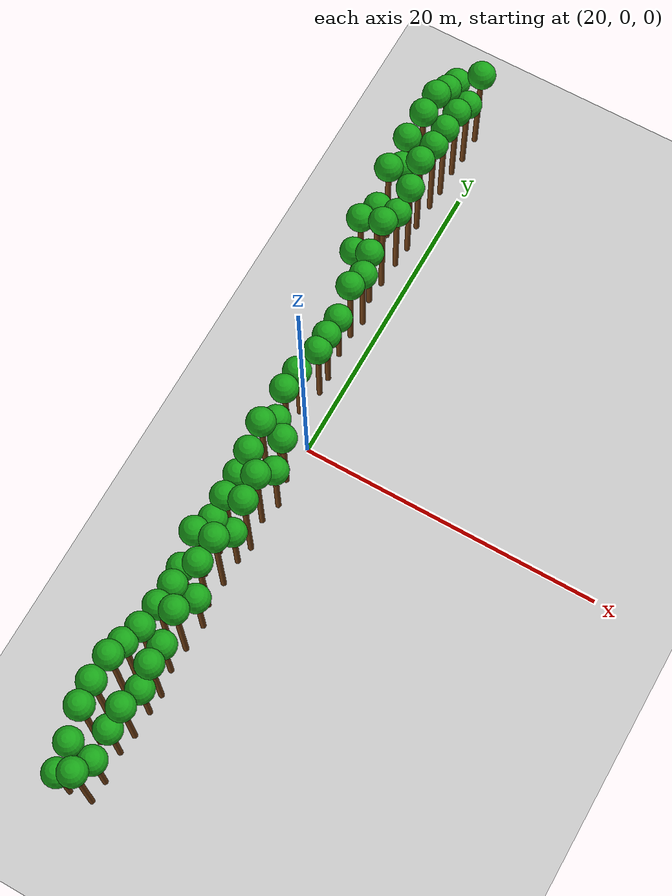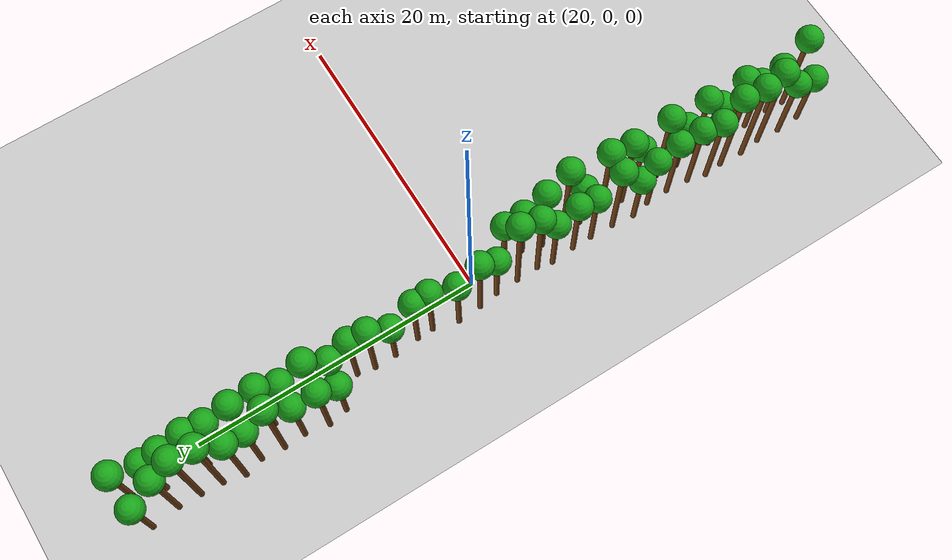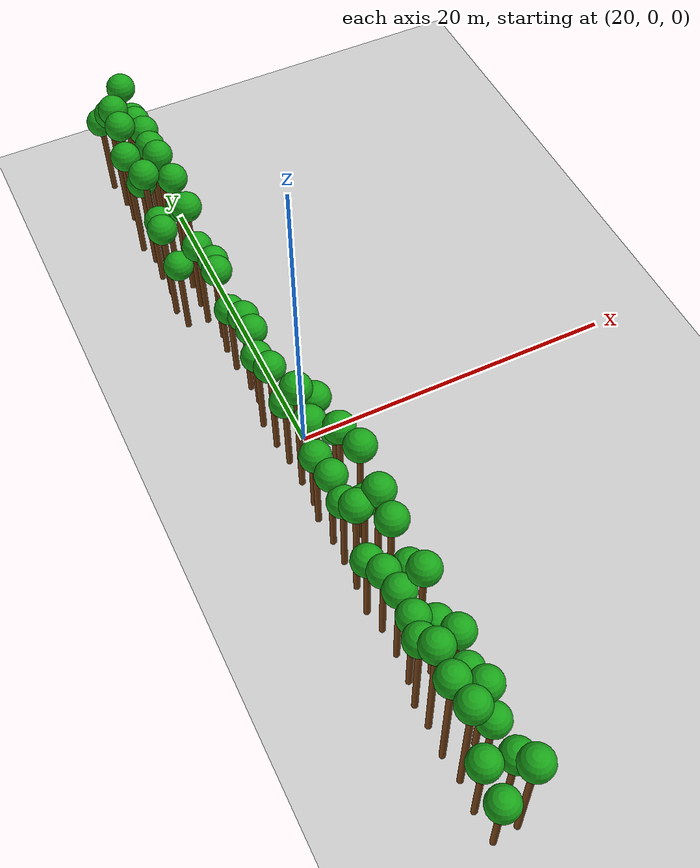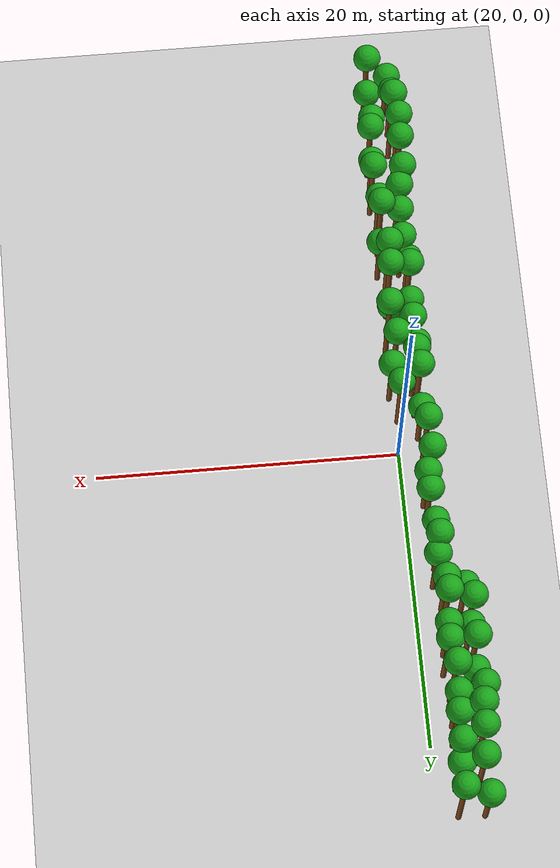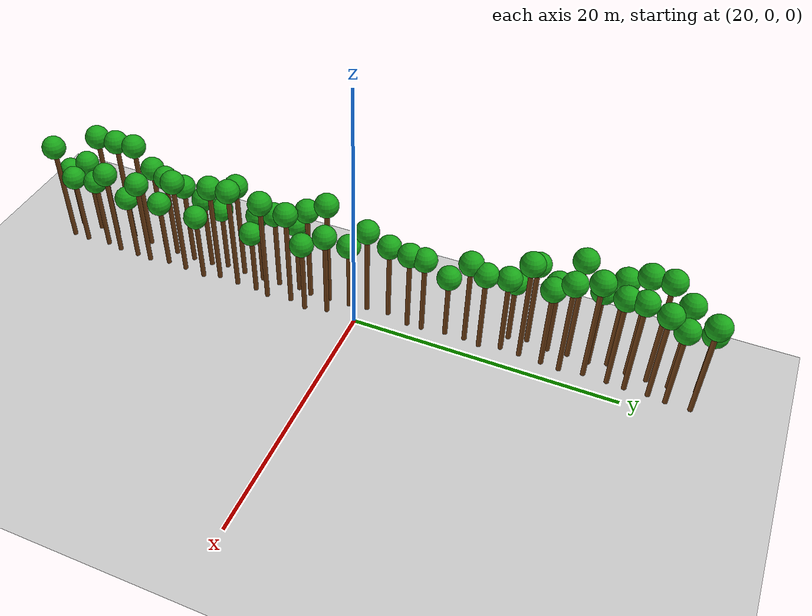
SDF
<sdf version="1.6">
 <world name="forest_world">
  <include><uri>model://sun</uri></include>
  <include><uri>model://ground_plane</uri></include>
  <model name="tree_963">
   <static>true</static>
   <link name="trunk">
    <collision name="collision">
     <pose>17.08 11.07 2.53 0 0 0</pose>
     <geometry><cylinder><radius>0.18</radius><length>5.06</length></cylinder></geometry>
    </collision>
    <visual name="trunk_visual">
     <pose>17.08 11.07 2.53 0 0 0</pose>
     <geometry><cylinder><radius>0.18</radius><length>5.06</length></cylinder></geometry>
     <material><ambient>0.35 0.20 0.05 1</ambient><diffuse>0.45 0.25 0.08 1</diffuse></material>
    </visual>
    <visual name="leaf_visual">
     <pose>17.08 11.07 5.51 0 0 0</pose>
     <geometry><sphere><radius>0.9</radius></sphere></geometry>
     <material><ambient>0.05 0.45 0.05 1</ambient><diffuse>0.10 0.65 0.10 1</diffuse></material>
    </visual>
   </link>
  </model>
  <model name="tree_964">
   <static>true</static>
   <link name="trunk">
    <collision name="collision">
     <pose>16.81 12.41 3.49 0 0 0</pose>
     <geometry><cylinder><radius>0.18</radius><length>6.98</length></cylinder></geometry>
    </collision>
    <visual name="trunk_visual">
     <pose>16.81 12.41 3.49 0 0 0</pose>
     <geometry><cylinder><radius>0.18</radius><length>6.98</length></cylinder></geometry>
     <material><ambient>0.35 0.20 0.05 1</ambient><diffuse>0.45 0.25 0.08 1</diffuse></material>
    </visual>
    <visual name="leaf_visual">
     <pose>16.81 12.41 7.43 0 0 0</pose>
     <geometry><sphere><radius>0.9</radius></sphere></geometry>
     <material><ambient>0.05 0.45 0.05 1</ambient><diffuse>0.10 0.65 0.10 1</diffuse></material>
    </visual>
   </link>
  </model>
  <model name="tree_965">
   <static>true</static>
   <link name="trunk">
    <collision name="collision">
     <pose>17.11 14.03 3.04 0 0 0</pose>
     <geometry><cylinder><radius>0.18</radius><length>6.07</length></cylinder></geometry>
    </collision>
    <visual name="trunk_visual">
     <pose>17.11 14.03 3.04 0 0 0</pose>
     <geometry><cylinder><radius>0.18</radius><length>6.07</length></cylinder></geometry>
     <material><ambient>0.35 0.20 0.05 1</ambient><diffuse>0.45 0.25 0.08 1</diffuse></material>
    </visual>
    <visual name="leaf_visual">
     <pose>17.11 14.03 6.52 0 0 0</pose>
     <geometry><sphere><radius>0.9</radius></sphere></geometry>
     <material><ambient>0.05 0.45 0.05 1</ambient><diffuse>0.10 0.65 0.10 1</diffuse></material>
    </visual>
   </link>
  </model>
  <model name="tree_966">
   <static>true</static>
   <link name="trunk">
    <collision name="collision">
     <pose>17.04 15.50 4.30 0 0 0</pose>
     <geometry><cylinder><radius>0.18</radius><length>8.61</length></cylinder></geometry>
    </collision>
    <visual name="trunk_visual">
     <pose>17.04 15.50 4.30 0 0 0</pose>
     <geometry><cylinder><radius>0.18</radius><length>8.61</length></cylinder></geometry>
     <material><ambient>0.35 0.20 0.05 1</ambient><diffuse>0.45 0.25 0.08 1</diffuse></material>
    </visual>
    <visual name="leaf_visual">
     <pose>17.04 15.50 9.06 0 0 0</pose>
     <geometry><sphere><radius>0.9</radius></sphere></geometry>
     <material><ambient>0.05 0.45 0.05 1</ambient><diffuse>0.10 0.65 0.10 1</diffuse></material>
    </visual>
   </link>
  </model>
  <model name="tree_967">
   <static>true</static>
   <link name="trunk">
    <collision name="collision">
     <pose>17.16 17.07 3.25 0 0 0</pose>
     <geometry><cylinder><radius>0.18</radius><length>6.51</length></cylinder></geometry>
    </collision>
    <visual name="trunk_visual">
     <pose>17.16 17.07 3.25 0 0 0</pose>
     <geometry><cylinder><radius>0.18</radius><length>6.51</length></cylinder></geometry>
     <material><ambient>0.35 0.20 0.05 1</ambient><diffuse>0.45 0.25 0.08 1</diffuse></material>
    </visual>
    <visual name="leaf_visual">
     <pose>17.16 17.07 6.96 0 0 0</pose>
     <geometry><sphere><radius>0.9</radius></sphere></geometry>
     <material><ambient>0.05 0.45 0.05 1</ambient><diffuse>0.10 0.65 0.10 1</diffuse></material>
    </visual>
   </link>
  </model>
  <model name="tree_968">
   <static>true</static>
   <link name="trunk">
    <collision name="collision">
     <pose>16.79 18.36 3.86 0 0 0</pose>
     <geometry><cylinder><radius>0.18</radius><length>7.72</length></cylinder></geometry>
    </collision>
    <visual name="trunk_visual">
     <pose>16.79 18.36 3.86 0 0 0</pose>
     <geometry><cylinder><radius>0.18</radius><length>7.72</length></cylinder></geometry>
     <material><ambient>0.35 0.20 0.05 1</ambient><diffuse>0.45 0.25 0.08 1</diffuse></material>
    </visual>
    <visual name="leaf_visual">
     <pose>16.79 18.36 8.17 0 0 0</pose>
     <geometry><sphere><radius>0.9</radius></sphere></geometry>
     <material><ambient>0.05 0.45 0.05 1</ambient><diffuse>0.10 0.65 0.10 1</diffuse></material>
    </visual>
   </link>
  </model>
  <model name="tree_969">
   <static>true</static>
   <link name="trunk">
    <collision name="collision">
     <pose>17.12 19.79 4.43 0 0 0</pose>
     <geometry><cylinder><radius>0.18</radius><length>8.85</length></cylinder></geometry>
    </collision>
    <visual name="trunk_visual">
     <pose>17.12 19.79 4.43 0 0 0</pose>
     <geometry><cylinder><radius>0.18</radius><length>8.85</length></cylinder></geometry>
     <material><ambient>0.35 0.20 0.05 1</ambient><diffuse>0.45 0.25 0.08 1</diffuse></material>
    </visual>
    <visual name="leaf_visual">
     <pose>17.12 19.79 9.30 0 0 0</pose>
     <geometry><sphere><radius>0.9</radius></sphere></geometry>
     <material><ambient>0.05 0.45 0.05 1</ambient><diffuse>0.10 0.65 0.10 1</diffuse></material>
    </visual>
   </link>
  </model>
  <model name="tree_970">
   <static>true</static>
   <link name="trunk">
    <collision name="collision">
     <pose>17.21 21.26 4.47 0 0 0</pose>
     <geometry><cylinder><radius>0.18</radius><length>8.95</length></cylinder></geometry>
    </collision>
    <visual name="trunk_visual">
     <pose>17.21 21.26 4.47 0 0 0</pose>
     <geometry><cylinder><radius>0.18</radius><length>8.95</length></cylinder></geometry>
     <material><ambient>0.35 0.20 0.05 1</ambient><diffuse>0.45 0.25 0.08 1</diffuse></material>
    </visual>
    <visual name="leaf_visual">
     <pose>17.21 21.26 9.40 0 0 0</pose>
     <geometry><sphere><radius>0.9</radius></sphere></geometry>
     <material><ambient>0.05 0.45 0.05 1</ambient><diffuse>0.10 0.65 0.10 1</diffuse></material>
    </visual>
   </link>
  </model>
  <model name="tree_971">
   <static>true</static>
   <link name="trunk">
    <collision name="collision">
     <pose>17.23 22.78 3.71 0 0 0</pose>
     <geometry><cylinder><radius>0.18</radius><length>7.42</length></cylinder></geometry>
    </collision>
    <visual name="trunk_visual">
     <pose>17.23 22.78 3.71 0 0 0</pose>
     <geometry><cylinder><radius>0.18</radius><length>7.42</length></cylinder></geometry>
     <material><ambient>0.35 0.20 0.05 1</ambient><diffuse>0.45 0.25 0.08 1</diffuse></material>
    </visual>
    <visual name="leaf_visual">
     <pose>17.23 22.78 7.87 0 0 0</pose>
     <geometry><sphere><radius>0.9</radius></sphere></geometry>
     <material><ambient>0.05 0.45 0.05 1</ambient><diffuse>0.10 0.65 0.10 1</diffuse></material>
    </visual>
   </link>
  </model>
  <model name="tree_972">
   <static>true</static>
   <link name="trunk">
    <collision name="collision">
     <pose>16.99 24.68 2.66 0 0 0</pose>
     <geometry><cylinder><radius>0.18</radius><length>5.32</length></cylinder></geometry>
    </collision>
    <visual name="trunk_visual">
     <pose>16.99 24.68 2.66 0 0 0</pose>
     <geometry><cylinder><radius>0.18</radius><length>5.32</length></cylinder></geometry>
     <material><ambient>0.35 0.20 0.05 1</ambient><diffuse>0.45 0.25 0.08 1</diffuse></material>
    </visual>
    <visual name="leaf_visual">
     <pose>16.99 24.68 5.77 0 0 0</pose>
     <geometry><sphere><radius>0.9</radius></sphere></geometry>
     <material><ambient>0.05 0.45 0.05 1</ambient><diffuse>0.10 0.65 0.10 1</diffuse></material>
    </visual>
   </link>
  </model>
  <model name="tree_973">
   <static>true</static>
   <link name="trunk">
    <collision name="collision">
     <pose>18.50 -25.24 2.51 0 0 0</pose>
     <geometry><cylinder><radius>0.18</radius><length>5.02</length></cylinder></geometry>
    </collision>
    <visual name="trunk_visual">
     <pose>18.50 -25.24 2.51 0 0 0</pose>
     <geometry><cylinder><radius>0.18</radius><length>5.02</length></cylinder></geometry>
     <material><ambient>0.35 0.20 0.05 1</ambient><diffuse>0.45 0.25 0.08 1</diffuse></material>
    </visual>
    <visual name="leaf_visual">
     <pose>18.50 -25.24 5.47 0 0 0</pose>
     <geometry><sphere><radius>0.9</radius></sphere></geometry>
     <material><ambient>0.05 0.45 0.05 1</ambient><diffuse>0.10 0.65 0.10 1</diffuse></material>
    </visual>
   </link>
  </model>
  <model name="tree_974">
   <static>true</static>
   <link name="trunk">
    <collision name="collision">
     <pose>18.39 -23.56 3.03 0 0 0</pose>
     <geometry><cylinder><radius>0.18</radius><length>6.07</length></cylinder></geometry>
    </collision>
    <visual name="trunk_visual">
     <pose>18.39 -23.56 3.03 0 0 0</pose>
     <geometry><cylinder><radius>0.18</radius><length>6.07</length></cylinder></geometry>
     <material><ambient>0.35 0.20 0.05 1</ambient><diffuse>0.45 0.25 0.08 1</diffuse></material>
    </visual>
    <visual name="leaf_visual">
     <pose>18.39 -23.56 6.52 0 0 0</pose>
     <geometry><sphere><radius>0.9</radius></sphere></geometry>
     <material><ambient>0.05 0.45 0.05 1</ambient><diffuse>0.10 0.65 0.10 1</diffuse></material>
    </visual>
   </link>
  </model>
  <model name="tree_975">
   <static>true</static>
   <link name="trunk">
    <collision name="collision">
     <pose>18.51 -21.91 4.49 0 0 0</pose>
     <geometry><cylinder><radius>0.18</radius><length>8.98</length></cylinder></geometry>
    </collision>
    <visual name="trunk_visual">
     <pose>18.51 -21.91 4.49 0 0 0</pose>
     <geometry><cylinder><radius>0.18</radius><length>8.98</length></cylinder></geometry>
     <material><ambient>0.35 0.20 0.05 1</ambient><diffuse>0.45 0.25 0.08 1</diffuse></material>
    </visual>
    <visual name="leaf_visual">
     <pose>18.51 -21.91 9.43 0 0 0</pose>
     <geometry><sphere><radius>0.9</radius></sphere></geometry>
     <material><ambient>0.05 0.45 0.05 1</ambient><diffuse>0.10 0.65 0.10 1</diffuse></material>
    </visual>
   </link>
  </model>
  <model name="tree_976">
   <static>true</static>
   <link name="trunk">
    <collision name="collision">
     <pose>18.31 -20.41 4.41 0 0 0</pose>
     <geometry><cylinder><radius>0.18</radius><length>8.81</length></cylinder></geometry>
    </collision>
    <visual name="trunk_visual">
     <pose>18.31 -20.41 4.41 0 0 0</pose>
     <geometry><cylinder><radius>0.18</radius><length>8.81</length></cylinder></geometry>
     <material><ambient>0.35 0.20 0.05 1</ambient><diffuse>0.45 0.25 0.08 1</diffuse></material>
    </visual>
    <visual name="leaf_visual">
     <pose>18.31 -20.41 9.26 0 0 0</pose>
     <geometry><sphere><radius>0.9</radius></sphere></geometry>
     <material><ambient>0.05 0.45 0.05 1</ambient><diffuse>0.10 0.65 0.10 1</diffuse></material>
    </visual>
   </link>
  </model>
  <model name="tree_977">
   <static>true</static>
   <link name="trunk">
    <collision name="collision">
     <pose>18.40 -18.75 4.48 0 0 0</pose>
     <geometry><cylinder><radius>0.18</radius><length>8.95</length></cylinder></geometry>
    </collision>
    <visual name="trunk_visual">
     <pose>18.40 -18.75 4.48 0 0 0</pose>
     <geometry><cylinder><radius>0.18</radius><length>8.95</length></cylinder></geometry>
     <material><ambient>0.35 0.20 0.05 1</ambient><diffuse>0.45 0.25 0.08 1</diffuse></material>
    </visual>
    <visual name="leaf_visual">
     <pose>18.40 -18.75 9.40 0 0 0</pose>
     <geometry><sphere><radius>0.9</radius></sphere></geometry>
     <material><ambient>0.05 0.45 0.05 1</ambient><diffuse>0.10 0.65 0.10 1</diffuse></material>
    </visual>
   </link>
  </model>
  <model name="tree_978">
   <static>true</static>
   <link name="trunk">
    <collision name="collision">
     <pose>18.29 -17.46 3.60 0 0 0</pose>
     <geometry><cylinder><radius>0.18</radius><length>7.21</length></cylinder></geometry>
    </collision>
    <visual name="trunk_visual">
     <pose>18.29 -17.46 3.60 0 0 0</pose>
     <geometry><cylinder><radius>0.18</radius><length>7.21</length></cylinder></geometry>
     <material><ambient>0.35 0.20 0.05 1</ambient><diffuse>0.45 0.25 0.08 1</diffuse></material>
    </visual>
    <visual name="leaf_visual">
     <pose>18.29 -17.46 7.66 0 0 0</pose>
     <geometry><sphere><radius>0.9</radius></sphere></geometry>
     <material><ambient>0.05 0.45 0.05 1</ambient><diffuse>0.10 0.65 0.10 1</diffuse></material>
    </visual>
   </link>
  </model>
  <model name="tree_979">
   <static>true</static>
   <link name="trunk">
    <collision name="collision">
     <pose>18.61 -16.18 3.49 0 0 0</pose>
     <geometry><cylinder><radius>0.18</radius><length>6.97</length></cylinder></geometry>
    </collision>
    <visual name="trunk_visual">
     <pose>18.61 -16.18 3.49 0 0 0</pose>
     <geometry><cylinder><radius>0.18</radius><length>6.97</length></cylinder></geometry>
     <material><ambient>0.35 0.20 0.05 1</ambient><diffuse>0.45 0.25 0.08 1</diffuse></material>
    </visual>
    <visual name="leaf_visual">
     <pose>18.61 -16.18 7.42 0 0 0</pose>
     <geometry><sphere><radius>0.9</radius></sphere></geometry>
     <material><ambient>0.05 0.45 0.05 1</ambient><diffuse>0.10 0.65 0.10 1</diffuse></material>
    </visual>
   </link>
  </model>
  <model name="tree_980">
   <static>true</static>
   <link name="trunk">
    <collision name="collision">
     <pose>18.72 -14.55 3.35 0 0 0</pose>
     <geometry><cylinder><radius>0.18</radius><length>6.70</length></cylinder></geometry>
    </collision>
    <visual name="trunk_visual">
     <pose>18.72 -14.55 3.35 0 0 0</pose>
     <geometry><cylinder><radius>0.18</radius><length>6.70</length></cylinder></geometry>
     <material><ambient>0.35 0.20 0.05 1</ambient><diffuse>0.45 0.25 0.08 1</diffuse></material>
    </visual>
    <visual name="leaf_visual">
     <pose>18.72 -14.55 7.15 0 0 0</pose>
     <geometry><sphere><radius>0.9</radius></sphere></geometry>
     <material><ambient>0.05 0.45 0.05 1</ambient><diffuse>0.10 0.65 0.10 1</diffuse></material>
    </visual>
   </link>
  </model>
  <model name="tree_981">
   <static>true</static>
   <link name="trunk">
    <collision name="collision">
     <pose>18.68 -12.95 3.00 0 0 0</pose>
     <geometry><cylinder><radius>0.18</radius><length>6.00</length></cylinder></geometry>
    </collision>
    <visual name="trunk_visual">
     <pose>18.68 -12.95 3.00 0 0 0</pose>
     <geometry><cylinder><radius>0.18</radius><length>6.00</length></cylinder></geometry>
     <material><ambient>0.35 0.20 0.05 1</ambient><diffuse>0.45 0.25 0.08 1</diffuse></material>
    </visual>
    <visual name="leaf_visual">
     <pose>18.68 -12.95 6.45 0 0 0</pose>
     <geometry><sphere><radius>0.9</radius></sphere></geometry>
     <material><ambient>0.05 0.45 0.05 1</ambient><diffuse>0.10 0.65 0.10 1</diffuse></material>
    </visual>
   </link>
  </model>
  <model name="tree_982">
   <static>true</static>
   <link name="trunk">
    <collision name="collision">
     <pose>18.41 -11.66 2.60 0 0 0</pose>
     <geometry><cylinder><radius>0.18</radius><length>5.21</length></cylinder></geometry>
    </collision>
    <visual name="trunk_visual">
     <pose>18.41 -11.66 2.60 0 0 0</pose>
     <geometry><cylinder><radius>0.18</radius><length>5.21</length></cylinder></geometry>
     <material><ambient>0.35 0.20 0.05 1</ambient><diffuse>0.45 0.25 0.08 1</diffuse></material>
    </visual>
    <visual name="leaf_visual">
     <pose>18.41 -11.66 5.66 0 0 0</pose>
     <geometry><sphere><radius>0.9</radius></sphere></geometry>
     <material><ambient>0.05 0.45 0.05 1</ambient><diffuse>0.10 0.65 0.10 1</diffuse></material>
    </visual>
   </link>
  </model>
  <model name="tree_983">
   <static>true</static>
   <link name="trunk">
    <collision name="collision">
     <pose>18.57 -10.07 3.99 0 0 0</pose>
     <geometry><cylinder><radius>0.18</radius><length>7.98</length></cylinder></geometry>
    </collision>
    <visual name="trunk_visual">
     <pose>18.57 -10.07 3.99 0 0 0</pose>
     <geometry><cylinder><radius>0.18</radius><length>7.98</length></cylinder></geometry>
     <material><ambient>0.35 0.20 0.05 1</ambient><diffuse>0.45 0.25 0.08 1</diffuse></material>
    </visual>
    <visual name="leaf_visual">
     <pose>18.57 -10.07 8.43 0 0 0</pose>
     <geometry><sphere><radius>0.9</radius></sphere></geometry>
     <material><ambient>0.05 0.45 0.05 1</ambient><diffuse>0.10 0.65 0.10 1</diffuse></material>
    </visual>
   </link>
  </model>
  <model name="tree_984">
   <static>true</static>
   <link name="trunk">
    <collision name="collision">
     <pose>18.63 -8.40 2.93 0 0 0</pose>
     <geometry><cylinder><radius>0.18</radius><length>5.86</length></cylinder></geometry>
    </collision>
    <visual name="trunk_visual">
     <pose>18.63 -8.40 2.93 0 0 0</pose>
     <geometry><cylinder><radius>0.18</radius><length>5.86</length></cylinder></geometry>
     <material><ambient>0.35 0.20 0.05 1</ambient><diffuse>0.45 0.25 0.08 1</diffuse></material>
    </visual>
    <visual name="leaf_visual">
     <pose>18.63 -8.40 6.31 0 0 0</pose>
     <geometry><sphere><radius>0.9</radius></sphere></geometry>
     <material><ambient>0.05 0.45 0.05 1</ambient><diffuse>0.10 0.65 0.10 1</diffuse></material>
    </visual>
   </link>
  </model>
  <model name="tree_985">
   <static>true</static>
   <link name="trunk">
    <collision name="collision">
     <pose>18.62 -6.99 3.20 0 0 0</pose>
     <geometry><cylinder><radius>0.18</radius><length>6.39</length></cylinder></geometry>
    </collision>
    <visual name="trunk_visual">
     <pose>18.62 -6.99 3.20 0 0 0</pose>
     <geometry><cylinder><radius>0.18</radius><length>6.39</length></cylinder></geometry>
     <material><ambient>0.35 0.20 0.05 1</ambient><diffuse>0.45 0.25 0.08 1</diffuse></material>
    </visual>
    <visual name="leaf_visual">
     <pose>18.62 -6.99 6.84 0 0 0</pose>
     <geometry><sphere><radius>0.9</radius></sphere></geometry>
     <material><ambient>0.05 0.45 0.05 1</ambient><diffuse>0.10 0.65 0.10 1</diffuse></material>
    </visual>
   </link>
  </model>
  <model name="tree_986">
   <static>true</static>
   <link name="trunk">
    <collision name="collision">
     <pose>18.49 -5.31 2.98 0 0 0</pose>
     <geometry><cylinder><radius>0.18</radius><length>5.96</length></cylinder></geometry>
    </collision>
    <visual name="trunk_visual">
     <pose>18.49 -5.31 2.98 0 0 0</pose>
     <geometry><cylinder><radius>0.18</radius><length>5.96</length></cylinder></geometry>
     <material><ambient>0.35 0.20 0.05 1</ambient><diffuse>0.45 0.25 0.08 1</diffuse></material>
    </visual>
    <visual name="leaf_visual">
     <pose>18.49 -5.31 6.41 0 0 0</pose>
     <geometry><sphere><radius>0.9</radius></sphere></geometry>
     <material><ambient>0.05 0.45 0.05 1</ambient><diffuse>0.10 0.65 0.10 1</diffuse></material>
    </visual>
   </link>
  </model>
  <model name="tree_987">
   <static>true</static>
   <link name="trunk">
    <collision name="collision">
     <pose>18.71 -4.25 3.84 0 0 0</pose>
     <geometry><cylinder><radius>0.18</radius><length>7.67</length></cylinder></geometry>
    </collision>
    <visual name="trunk_visual">
     <pose>18.71 -4.25 3.84 0 0 0</pose>
     <geometry><cylinder><radius>0.18</radius><length>7.67</length></cylinder></geometry>
     <material><ambient>0.35 0.20 0.05 1</ambient><diffuse>0.45 0.25 0.08 1</diffuse></material>
    </visual>
    <visual name="leaf_visual">
     <pose>18.71 -4.25 8.12 0 0 0</pose>
     <geometry><sphere><radius>0.9</radius></sphere></geometry>
     <material><ambient>0.05 0.45 0.05 1</ambient><diffuse>0.10 0.65 0.10 1</diffuse></material>
    </visual>
   </link>
  </model>
  <model name="tree_988">
   <static>true</static>
   <link name="trunk">
    <collision name="collision">
     <pose>18.67 -2.69 4.32 0 0 0</pose>
     <geometry><cylinder><radius>0.18</radius><length>8.64</length></cylinder></geometry>
    </collision>
    <visual name="trunk_visual">
     <pose>18.67 -2.69 4.32 0 0 0</pose>
     <geometry><cylinder><radius>0.18</radius><length>8.64</length></cylinder></geometry>
     <material><ambient>0.35 0.20 0.05 1</ambient><diffuse>0.45 0.25 0.08 1</diffuse></material>
    </visual>
    <visual name="leaf_visual">
     <pose>18.67 -2.69 9.09 0 0 0</pose>
     <geometry><sphere><radius>0.9</radius></sphere></geometry>
     <material><ambient>0.05 0.45 0.05 1</ambient><diffuse>0.10 0.65 0.10 1</diffuse></material>
    </visual>
   </link>
  </model>
  <model name="tree_989">
   <static>true</static>
   <link name="trunk">
    <collision name="collision">
     <pose>18.61 -1.05 2.69 0 0 0</pose>
     <geometry><cylinder><radius>0.18</radius><length>5.38</length></cylinder></geometry>
    </collision>
    <visual name="trunk_visual">
     <pose>18.61 -1.05 2.69 0 0 0</pose>
     <geometry><cylinder><radius>0.18</radius><length>5.38</length></cylinder></geometry>
     <material><ambient>0.35 0.20 0.05 1</ambient><diffuse>0.45 0.25 0.08 1</diffuse></material>
    </visual>
    <visual name="leaf_visual">
     <pose>18.61 -1.05 5.83 0 0 0</pose>
     <geometry><sphere><radius>0.9</radius></sphere></geometry>
     <material><ambient>0.05 0.45 0.05 1</ambient><diffuse>0.10 0.65 0.10 1</diffuse></material>
    </visual>
   </link>
  </model>
  <model name="tree_990">
   <static>true</static>
   <link name="trunk">
    <collision name="collision">
     <pose>18.41 0.32 3.52 0 0 0</pose>
     <geometry><cylinder><radius>0.18</radius><length>7.04</length></cylinder></geometry>
    </collision>
    <visual name="trunk_visual">
     <pose>18.41 0.32 3.52 0 0 0</pose>
     <geometry><cylinder><radius>0.18</radius><length>7.04</length></cylinder></geometry>
     <material><ambient>0.35 0.20 0.05 1</ambient><diffuse>0.45 0.25 0.08 1</diffuse></material>
    </visual>
    <visual name="leaf_visual">
     <pose>18.41 0.32 7.49 0 0 0</pose>
     <geometry><sphere><radius>0.9</radius></sphere></geometry>
     <material><ambient>0.05 0.45 0.05 1</ambient><diffuse>0.10 0.65 0.10 1</diffuse></material>
    </visual>
   </link>
  </model>
  <model name="tree_991">
   <static>true</static>
   <link name="trunk">
    <collision name="collision">
     <pose>18.29 2.00 3.06 0 0 0</pose>
     <geometry><cylinder><radius>0.18</radius><length>6.12</length></cylinder></geometry>
    </collision>
    <visual name="trunk_visual">
     <pose>18.29 2.00 3.06 0 0 0</pose>
     <geometry><cylinder><radius>0.18</radius><length>6.12</length></cylinder></geometry>
     <material><ambient>0.35 0.20 0.05 1</ambient><diffuse>0.45 0.25 0.08 1</diffuse></material>
    </visual>
    <visual name="leaf_visual">
     <pose>18.29 2.00 6.57 0 0 0</pose>
     <geometry><sphere><radius>0.9</radius></sphere></geometry>
     <material><ambient>0.05 0.45 0.05 1</ambient><diffuse>0.10 0.65 0.10 1</diffuse></material>
    </visual>
   </link>
  </model>
  <model name="tree_992">
   <static>true</static>
   <link name="trunk">
    <collision name="collision">
     <pose>18.74 3.72 3.15 0 0 0</pose>
     <geometry><cylinder><radius>0.18</radius><length>6.30</length></cylinder></geometry>
    </collision>
    <visual name="trunk_visual">
     <pose>18.74 3.72 3.15 0 0 0</pose>
     <geometry><cylinder><radius>0.18</radius><length>6.30</length></cylinder></geometry>
     <material><ambient>0.35 0.20 0.05 1</ambient><diffuse>0.45 0.25 0.08 1</diffuse></material>
    </visual>
    <visual name="leaf_visual">
     <pose>18.74 3.72 6.75 0 0 0</pose>
     <geometry><sphere><radius>0.9</radius></sphere></geometry>
     <material><ambient>0.05 0.45 0.05 1</ambient><diffuse>0.10 0.65 0.10 1</diffuse></material>
    </visual>
   </link>
  </model>
  <model name="tree_993">
   <static>true</static>
   <link name="trunk">
    <collision name="collision">
     <pose>18.71 4.85 3.12 0 0 0</pose>
     <geometry><cylinder><radius>0.18</radius><length>6.25</length></cylinder></geometry>
    </collision>
    <visual name="trunk_visual">
     <pose>18.71 4.85 3.12 0 0 0</pose>
     <geometry><cylinder><radius>0.18</radius><length>6.25</length></cylinder></geometry>
     <material><ambient>0.35 0.20 0.05 1</ambient><diffuse>0.45 0.25 0.08 1</diffuse></material>
    </visual>
    <visual name="leaf_visual">
     <pose>18.71 4.85 6.70 0 0 0</pose>
     <geometry><sphere><radius>0.9</radius></sphere></geometry>
     <material><ambient>0.05 0.45 0.05 1</ambient><diffuse>0.10 0.65 0.10 1</diffuse></material>
    </visual>
   </link>
  </model>
  <model name="tree_994">
   <static>true</static>
   <link name="trunk">
    <collision name="collision">
     <pose>18.50 6.63 2.52 0 0 0</pose>
     <geometry><cylinder><radius>0.18</radius><length>5.04</length></cylinder></geometry>
    </collision>
    <visual name="trunk_visual">
     <pose>18.50 6.63 2.52 0 0 0</pose>
     <geometry><cylinder><radius>0.18</radius><length>5.04</length></cylinder></geometry>
     <material><ambient>0.35 0.20 0.05 1</ambient><diffuse>0.45 0.25 0.08 1</diffuse></material>
    </visual>
    <visual name="leaf_visual">
     <pose>18.50 6.63 5.49 0 0 0</pose>
     <geometry><sphere><radius>0.9</radius></sphere></geometry>
     <material><ambient>0.05 0.45 0.05 1</ambient><diffuse>0.10 0.65 0.10 1</diffuse></material>
    </visual>
   </link>
  </model>
  <model name="tree_995">
   <static>true</static>
   <link name="trunk">
    <collision name="collision">
     <pose>18.49 8.13 3.45 0 0 0</pose>
     <geometry><cylinder><radius>0.18</radius><length>6.90</length></cylinder></geometry>
    </collision>
    <visual name="trunk_visual">
     <pose>18.49 8.13 3.45 0 0 0</pose>
     <geometry><cylinder><radius>0.18</radius><length>6.90</length></cylinder></geometry>
     <material><ambient>0.35 0.20 0.05 1</ambient><diffuse>0.45 0.25 0.08 1</diffuse></material>
    </visual>
    <visual name="leaf_visual">
     <pose>18.49 8.13 7.35 0 0 0</pose>
     <geometry><sphere><radius>0.9</radius></sphere></geometry>
     <material><ambient>0.05 0.45 0.05 1</ambient><diffuse>0.10 0.65 0.10 1</diffuse></material>
    </visual>
   </link>
  </model>
  <model name="tree_996">
   <static>true</static>
   <link name="trunk">
    <collision name="collision">
     <pose>18.71 9.32 3.23 0 0 0</pose>
     <geometry><cylinder><radius>0.18</radius><length>6.46</length></cylinder></geometry>
    </collision>
    <visual name="trunk_visual">
     <pose>18.71 9.32 3.23 0 0 0</pose>
     <geometry><cylinder><radius>0.18</radius><length>6.46</length></cylinder></geometry>
     <material><ambient>0.35 0.20 0.05 1</ambient><diffuse>0.45 0.25 0.08 1</diffuse></material>
    </visual>
    <visual name="leaf_visual">
     <pose>18.71 9.32 6.91 0 0 0</pose>
     <geometry><sphere><radius>0.9</radius></sphere></geometry>
     <material><ambient>0.05 0.45 0.05 1</ambient><diffuse>0.10 0.65 0.10 1</diffuse></material>
    </visual>
   </link>
  </model>
  <model name="tree_997">
   <static>true</static>
   <link name="trunk">
    <collision name="collision">
     <pose>18.32 10.86 3.18 0 0 0</pose>
     <geometry><cylinder><radius>0.18</radius><length>6.35</length></cylinder></geometry>
    </collision>
    <visual name="trunk_visual">
     <pose>18.32 10.86 3.18 0 0 0</pose>
     <geometry><cylinder><radius>0.18</radius><length>6.35</length></cylinder></geometry>
     <material><ambient>0.35 0.20 0.05 1</ambient><diffuse>0.45 0.25 0.08 1</diffuse></material>
    </visual>
    <visual name="leaf_visual">
     <pose>18.32 10.86 6.80 0 0 0</pose>
     <geometry><sphere><radius>0.9</radius></sphere></geometry>
     <material><ambient>0.05 0.45 0.05 1</ambient><diffuse>0.10 0.65 0.10 1</diffuse></material>
    </visual>
   </link>
  </model>
  <model name="tree_998">
   <static>true</static>
   <link name="trunk">
    <collision name="collision">
     <pose>18.42 12.29 4.13 0 0 0</pose>
     <geometry><cylinder><radius>0.18</radius><length>8.26</length></cylinder></geometry>
    </collision>
    <visual name="trunk_visual">
     <pose>18.42 12.29 4.13 0 0 0</pose>
     <geometry><cylinder><radius>0.18</radius><length>8.26</length></cylinder></geometry>
     <material><ambient>0.35 0.20 0.05 1</ambient><diffuse>0.45 0.25 0.08 1</diffuse></material>
    </visual>
    <visual name="leaf_visual">
     <pose>18.42 12.29 8.71 0 0 0</pose>
     <geometry><sphere><radius>0.9</radius></sphere></geometry>
     <material><ambient>0.05 0.45 0.05 1</ambient><diffuse>0.10 0.65 0.10 1</diffuse></material>
    </visual>
   </link>
  </model>
  <model name="tree_999">
   <static>true</static>
   <link name="trunk">
    <collision name="collision">
     <pose>18.53 13.96 3.34 0 0 0</pose>
     <geometry><cylinder><radius>0.18</radius><length>6.69</length></cylinder></geometry>
    </collision>
    <visual name="trunk_visual">
     <pose>18.53 13.96 3.34 0 0 0</pose>
     <geometry><cylinder><radius>0.18</radius><length>6.69</length></cylinder></geometry>
     <material><ambient>0.35 0.20 0.05 1</ambient><diffuse>0.45 0.25 0.08 1</diffuse></material>
    </visual>
    <visual name="leaf_visual">
     <pose>18.53 13.96 7.14 0 0 0</pose>
     <geometry><sphere><radius>0.9</radius></sphere></geometry>
     <material><ambient>0.05 0.45 0.05 1</ambient><diffuse>0.10 0.65 0.10 1</diffuse></material>
    </visual>
   </link>
  </model>
  <model name="tree_1000">
   <static>true</static>
   <link name="trunk">
    <collision name="collision">
     <pose>18.66 15.31 3.90 0 0 0</pose>
     <geometry><cylinder><radius>0.18</radius><length>7.80</length></cylinder></geometry>
    </collision>
    <visual name="trunk_visual">
     <pose>18.66 15.31 3.90 0 0 0</pose>
     <geometry><cylinder><radius>0.18</radius><length>7.80</length></cylinder></geometry>
     <material><ambient>0.35 0.20 0.05 1</ambient><diffuse>0.45 0.25 0.08 1</diffuse></material>
    </visual>
    <visual name="leaf_visual">
     <pose>18.66 15.31 8.25 0 0 0</pose>
     <geometry><sphere><radius>0.9</radius></sphere></geometry>
     <material><ambient>0.05 0.45 0.05 1</ambient><diffuse>0.10 0.65 0.10 1</diffuse></material>
    </visual>
   </link>
  </model>
  <model name="tree_1001">
   <static>true</static>
   <link name="trunk">
    <collision name="collision">
     <pose>18.42 17.02 4.17 0 0 0</pose>
     <geometry><cylinder><radius>0.18</radius><length>8.33</length></cylinder></geometry>
    </collision>
    <visual name="trunk_visual">
     <pose>18.42 17.02 4.17 0 0 0</pose>
     <geometry><cylinder><radius>0.18</radius><length>8.33</length></cylinder></geometry>
     <material><ambient>0.35 0.20 0.05 1</ambient><diffuse>0.45 0.25 0.08 1</diffuse></material>
    </visual>
    <visual name="leaf_visual">
     <pose>18.42 17.02 8.78 0 0 0</pose>
     <geometry><sphere><radius>0.9</radius></sphere></geometry>
     <material><ambient>0.05 0.45 0.05 1</ambient><diffuse>0.10 0.65 0.10 1</diffuse></material>
    </visual>
   </link>
  </model>
  <model name="tree_1002">
   <static>true</static>
   <link name="trunk">
    <collision name="collision">
     <pose>18.47 18.73 3.82 0 0 0</pose>
     <geometry><cylinder><radius>0.18</radius><length>7.64</length></cylinder></geometry>
    </collision>
    <visual name="trunk_visual">
     <pose>18.47 18.73 3.82 0 0 0</pose>
     <geometry><cylinder><radius>0.18</radius><length>7.64</length></cylinder></geometry>
     <material><ambient>0.35 0.20 0.05 1</ambient><diffuse>0.45 0.25 0.08 1</diffuse></material>
    </visual>
    <visual name="leaf_visual">
     <pose>18.47 18.73 8.09 0 0 0</pose>
     <geometry><sphere><radius>0.9</radius></sphere></geometry>
     <material><ambient>0.05 0.45 0.05 1</ambient><diffuse>0.10 0.65 0.10 1</diffuse></material>
    </visual>
   </link>
  </model>
  <model name="tree_1003">
   <static>true</static>
   <link name="trunk">
    <collision name="collision">
     <pose>18.56 19.99 3.90 0 0 0</pose>
     <geometry><cylinder><radius>0.18</radius><length>7.80</length></cylinder></geometry>
    </collision>
    <visual name="trunk_visual">
     <pose>18.56 19.99 3.90 0 0 0</pose>
     <geometry><cylinder><radius>0.18</radius><length>7.80</length></cylinder></geometry>
     <material><ambient>0.35 0.20 0.05 1</ambient><diffuse>0.45 0.25 0.08 1</diffuse></material>
    </visual>
    <visual name="leaf_visual">
     <pose>18.56 19.99 8.25 0 0 0</pose>
     <geometry><sphere><radius>0.9</radius></sphere></geometry>
     <material><ambient>0.05 0.45 0.05 1</ambient><diffuse>0.10 0.65 0.10 1</diffuse></material>
    </visual>
   </link>
  </model>
  <model name="tree_1004">
   <static>true</static>
   <link name="trunk">
    <collision name="collision">
     <pose>18.53 21.65 3.64 0 0 0</pose>
     <geometry><cylinder><radius>0.18</radius><length>7.27</length></cylinder></geometry>
    </collision>
    <visual name="trunk_visual">
     <pose>18.53 21.65 3.64 0 0 0</pose>
     <geometry><cylinder><radius>0.18</radius><length>7.27</length></cylinder></geometry>
     <material><ambient>0.35 0.20 0.05 1</ambient><diffuse>0.45 0.25 0.08 1</diffuse></material>
    </visual>
    <visual name="leaf_visual">
     <pose>18.53 21.65 7.72 0 0 0</pose>
     <geometry><sphere><radius>0.9</radius></sphere></geometry>
     <material><ambient>0.05 0.45 0.05 1</ambient><diffuse>0.10 0.65 0.10 1</diffuse></material>
    </visual>
   </link>
  </model>
  <model name="tree_1005">
   <static>true</static>
   <link name="trunk">
    <collision name="collision">
     <pose>18.68 22.89 3.25 0 0 0</pose>
     <geometry><cylinder><radius>0.18</radius><length>6.51</length></cylinder></geometry>
    </collision>
    <visual name="trunk_visual">
     <pose>18.68 22.89 3.25 0 0 0</pose>
     <geometry><cylinder><radius>0.18</radius><length>6.51</length></cylinder></geometry>
     <material><ambient>0.35 0.20 0.05 1</ambient><diffuse>0.45 0.25 0.08 1</diffuse></material>
    </visual>
    <visual name="leaf_visual">
     <pose>18.68 22.89 6.96 0 0 0</pose>
     <geometry><sphere><radius>0.9</radius></sphere></geometry>
     <material><ambient>0.05 0.45 0.05 1</ambient><diffuse>0.10 0.65 0.10 1</diffuse></material>
    </visual>
   </link>
  </model>
  <model name="tree_1006">
   <static>true</static>
   <link name="trunk">
    <collision name="collision">
     <pose>18.68 24.62 3.77 0 0 0</pose>
     <geometry><cylinder><radius>0.18</radius><length>7.55</length></cylinder></geometry>
    </collision>
    <visual name="trunk_visual">
     <pose>18.68 24.62 3.77 0 0 0</pose>
     <geometry><cylinder><radius>0.18</radius><length>7.55</length></cylinder></geometry>
     <material><ambient>0.35 0.20 0.05 1</ambient><diffuse>0.45 0.25 0.08 1</diffuse></material>
    </visual>
    <visual name="leaf_visual">
     <pose>18.68 24.62 8.00 0 0 0</pose>
     <geometry><sphere><radius>0.9</radius></sphere></geometry>
     <material><ambient>0.05 0.45 0.05 1</ambient><diffuse>0.10 0.65 0.10 1</diffuse></material>
    </visual>
   </link>
  </model>
  <model name="tree_1007">
   <static>true</static>
   <link name="trunk">
    <collision name="collision">
     <pose>19.93 -25.09 4.02 0 0 0</pose>
     <geometry><cylinder><radius>0.18</radius><length>8.04</length></cylinder></geometry>
    </collision>
    <visual name="trunk_visual">
     <pose>19.93 -25.09 4.02 0 0 0</pose>
     <geometry><cylinder><radius>0.18</radius><length>8.04</length></cylinder></geometry>
     <material><ambient>0.35 0.20 0.05 1</ambient><diffuse>0.45 0.25 0.08 1</diffuse></material>
    </visual>
    <visual name="leaf_visual">
     <pose>19.93 -25.09 8.49 0 0 0</pose>
     <geometry><sphere><radius>0.9</radius></sphere></geometry>
     <material><ambient>0.05 0.45 0.05 1</ambient><diffuse>0.10 0.65 0.10 1</diffuse></material>
    </visual>
   </link>
  </model>
  <model name="tree_1008">
   <static>true</static>
   <link name="trunk">
    <collision name="collision">
     <pose>20.01 -23.75 2.83 0 0 0</pose>
     <geometry><cylinder><radius>0.18</radius><length>5.65</length></cylinder></geometry>
    </collision>
    <visual name="trunk_visual">
     <pose>20.01 -23.75 2.83 0 0 0</pose>
     <geometry><cylinder><radius>0.18</radius><length>5.65</length></cylinder></geometry>
     <material><ambient>0.35 0.20 0.05 1</ambient><diffuse>0.45 0.25 0.08 1</diffuse></material>
    </visual>
    <visual name="leaf_visual">
     <pose>20.01 -23.75 6.10 0 0 0</pose>
     <geometry><sphere><radius>0.9</radius></sphere></geometry>
     <material><ambient>0.05 0.45 0.05 1</ambient><diffuse>0.10 0.65 0.10 1</diffuse></material>
    </visual>
   </link>
  </model>
  <model name="tree_1009">
   <static>true</static>
   <link name="trunk">
    <collision name="collision">
     <pose>19.86 -21.86 2.86 0 0 0</pose>
     <geometry><cylinder><radius>0.18</radius><length>5.73</length></cylinder></geometry>
    </collision>
    <visual name="trunk_visual">
     <pose>19.86 -21.86 2.86 0 0 0</pose>
     <geometry><cylinder><radius>0.18</radius><length>5.73</length></cylinder></geometry>
     <material><ambient>0.35 0.20 0.05 1</ambient><diffuse>0.45 0.25 0.08 1</diffuse></material>
    </visual>
    <visual name="leaf_visual">
     <pose>19.86 -21.86 6.18 0 0 0</pose>
     <geometry><sphere><radius>0.9</radius></sphere></geometry>
     <material><ambient>0.05 0.45 0.05 1</ambient><diffuse>0.10 0.65 0.10 1</diffuse></material>
    </visual>
   </link>
  </model>
  <model name="tree_1010">
   <static>true</static>
   <link name="trunk">
    <collision name="collision">
     <pose>20.08 -20.59 3.47 0 0 0</pose>
     <geometry><cylinder><radius>0.18</radius><length>6.94</length></cylinder></geometry>
    </collision>
    <visual name="trunk_visual">
     <pose>20.08 -20.59 3.47 0 0 0</pose>
     <geometry><cylinder><radius>0.18</radius><length>6.94</length></cylinder></geometry>
     <material><ambient>0.35 0.20 0.05 1</ambient><diffuse>0.45 0.25 0.08 1</diffuse></material>
    </visual>
    <visual name="leaf_visual">
     <pose>20.08 -20.59 7.39 0 0 0</pose>
     <geometry><sphere><radius>0.9</radius></sphere></geometry>
     <material><ambient>0.05 0.45 0.05 1</ambient><diffuse>0.10 0.65 0.10 1</diffuse></material>
    </visual>
   </link>
  </model>
  <model name="tree_1011">
   <static>true</static>
   <link name="trunk">
    <collision name="collision">
     <pose>20.11 -18.96 2.61 0 0 0</pose>
     <geometry><cylinder><radius>0.18</radius><length>5.22</length></cylinder></geometry>
    </collision>
    <visual name="trunk_visual">
     <pose>20.11 -18.96 2.61 0 0 0</pose>
     <geometry><cylinder><radius>0.18</radius><length>5.22</length></cylinder></geometry>
     <material><ambient>0.35 0.20 0.05 1</ambient><diffuse>0.45 0.25 0.08 1</diffuse></material>
    </visual>
    <visual name="leaf_visual">
     <pose>20.11 -18.96 5.67 0 0 0</pose>
     <geometry><sphere><radius>0.9</radius></sphere></geometry>
     <material><ambient>0.05 0.45 0.05 1</ambient><diffuse>0.10 0.65 0.10 1</diffuse></material>
    </visual>
   </link>
  </model>
  <model name="tree_1012">
   <static>true</static>
   <link name="trunk">
    <collision name="collision">
     <pose>20.18 -17.74 3.48 0 0 0</pose>
     <geometry><cylinder><radius>0.18</radius><length>6.95</length></cylinder></geometry>
    </collision>
    <visual name="trunk_visual">
     <pose>20.18 -17.74 3.48 0 0 0</pose>
     <geometry><cylinder><radius>0.18</radius><length>6.95</length></cylinder></geometry>
     <material><ambient>0.35 0.20 0.05 1</ambient><diffuse>0.45 0.25 0.08 1</diffuse></material>
    </visual>
    <visual name="leaf_visual">
     <pose>20.18 -17.74 7.40 0 0 0</pose>
     <geometry><sphere><radius>0.9</radius></sphere></geometry>
     <material><ambient>0.05 0.45 0.05 1</ambient><diffuse>0.10 0.65 0.10 1</diffuse></material>
    </visual>
   </link>
  </model>
  <model name="tree_1013">
   <static>true</static>
   <link name="trunk">
    <collision name="collision">
     <pose>19.90 -16.18 2.70 0 0 0</pose>
     <geometry><cylinder><radius>0.18</radius><length>5.41</length></cylinder></geometry>
    </collision>
    <visual name="trunk_visual">
     <pose>19.90 -16.18 2.70 0 0 0</pose>
     <geometry><cylinder><radius>0.18</radius><length>5.41</length></cylinder></geometry>
     <material><ambient>0.35 0.20 0.05 1</ambient><diffuse>0.45 0.25 0.08 1</diffuse></material>
    </visual>
    <visual name="leaf_visual">
     <pose>19.90 -16.18 5.86 0 0 0</pose>
     <geometry><sphere><radius>0.9</radius></sphere></geometry>
     <material><ambient>0.05 0.45 0.05 1</ambient><diffuse>0.10 0.65 0.10 1</diffuse></material>
    </visual>
   </link>
  </model>
  <model name="tree_1014">
   <static>true</static>
   <link name="trunk">
    <collision name="collision">
     <pose>19.98 -14.60 3.98 0 0 0</pose>
     <geometry><cylinder><radius>0.18</radius><length>7.96</length></cylinder></geometry>
    </collision>
    <visual name="trunk_visual">
     <pose>19.98 -14.60 3.98 0 0 0</pose>
     <geometry><cylinder><radius>0.18</radius><length>7.96</length></cylinder></geometry>
     <material><ambient>0.35 0.20 0.05 1</ambient><diffuse>0.45 0.25 0.08 1</diffuse></material>
    </visual>
    <visual name="leaf_visual">
     <pose>19.98 -14.60 8.41 0 0 0</pose>
     <geometry><sphere><radius>0.9</radius></sphere></geometry>
     <material><ambient>0.05 0.45 0.05 1</ambient><diffuse>0.10 0.65 0.10 1</diffuse></material>
    </visual>
   </link>
  </model>
  <model name="tree_1015">
   <static>true</static>
   <link name="trunk">
    <collision name="collision">
     <pose>20.15 -12.88 2.68 0 0 0</pose>
     <geometry><cylinder><radius>0.18</radius><length>5.37</length></cylinder></geometry>
    </collision>
    <visual name="trunk_visual">
     <pose>20.15 -12.88 2.68 0 0 0</pose>
     <geometry><cylinder><radius>0.18</radius><length>5.37</length></cylinder></geometry>
     <material><ambient>0.35 0.20 0.05 1</ambient><diffuse>0.45 0.25 0.08 1</diffuse></material>
    </visual>
    <visual name="leaf_visual">
     <pose>20.15 -12.88 5.82 0 0 0</pose>
     <geometry><sphere><radius>0.9</radius></sphere></geometry>
     <material><ambient>0.05 0.45 0.05 1</ambient><diffuse>0.10 0.65 0.10 1</diffuse></material>
    </visual>
   </link>
  </model>
  <model name="tree_1016">
   <static>true</static>
   <link name="trunk">
    <collision name="collision">
     <pose>19.75 -11.62 4.09 0 0 0</pose>
     <geometry><cylinder><radius>0.18</radius><length>8.19</length></cylinder></geometry>
    </collision>
    <visual name="trunk_visual">
     <pose>19.75 -11.62 4.09 0 0 0</pose>
     <geometry><cylinder><radius>0.18</radius><length>8.19</length></cylinder></geometry>
     <material><ambient>0.35 0.20 0.05 1</ambient><diffuse>0.45 0.25 0.08 1</diffuse></material>
    </visual>
    <visual name="leaf_visual">
     <pose>19.75 -11.62 8.64 0 0 0</pose>
     <geometry><sphere><radius>0.9</radius></sphere></geometry>
     <material><ambient>0.05 0.45 0.05 1</ambient><diffuse>0.10 0.65 0.10 1</diffuse></material>
    </visual>
   </link>
  </model>
  <model name="tree_1017">
   <static>true</static>
   <link name="trunk">
    <collision name="collision">
     <pose>19.86 -9.99 4.22 0 0 0</pose>
     <geometry><cylinder><radius>0.18</radius><length>8.44</length></cylinder></geometry>
    </collision>
    <visual name="trunk_visual">
     <pose>19.86 -9.99 4.22 0 0 0</pose>
     <geometry><cylinder><radius>0.18</radius><length>8.44</length></cylinder></geometry>
     <material><ambient>0.35 0.20 0.05 1</ambient><diffuse>0.45 0.25 0.08 1</diffuse></material>
    </visual>
    <visual name="leaf_visual">
     <pose>19.86 -9.99 8.89 0 0 0</pose>
     <geometry><sphere><radius>0.9</radius></sphere></geometry>
     <material><ambient>0.05 0.45 0.05 1</ambient><diffuse>0.10 0.65 0.10 1</diffuse></material>
    </visual>
   </link>
  </model>
  <model name="tree_1018">
   <static>true</static>
   <link name="trunk">
    <collision name="collision">
     <pose>19.89 -8.36 2.55 0 0 0</pose>
     <geometry><cylinder><radius>0.18</radius><length>5.10</length></cylinder></geometry>
    </collision>
    <visual name="trunk_visual">
     <pose>19.89 -8.36 2.55 0 0 0</pose>
     <geometry><cylinder><radius>0.18</radius><length>5.10</length></cylinder></geometry>
     <material><ambient>0.35 0.20 0.05 1</ambient><diffuse>0.45 0.25 0.08 1</diffuse></material>
    </visual>
    <visual name="leaf_visual">
     <pose>19.89 -8.36 5.55 0 0 0</pose>
     <geometry><sphere><radius>0.9</radius></sphere></geometry>
     <material><ambient>0.05 0.45 0.05 1</ambient><diffuse>0.10 0.65 0.10 1</diffuse></material>
    </visual>
   </link>
  </model>
  <model name="tree_1019">
   <static>true</static>
   <link name="trunk">
    <collision name="collision">
     <pose>20.16 -7.24 4.22 0 0 0</pose>
     <geometry><cylinder><radius>0.18</radius><length>8.44</length></cylinder></geometry>
    </collision>
    <visual name="trunk_visual">
     <pose>20.16 -7.24 4.22 0 0 0</pose>
     <geometry><cylinder><radius>0.18</radius><length>8.44</length></cylinder></geometry>
     <material><ambient>0.35 0.20 0.05 1</ambient><diffuse>0.45 0.25 0.08 1</diffuse></material>
    </visual>
    <visual name="leaf_visual">
     <pose>20.16 -7.24 8.89 0 0 0</pose>
     <geometry><sphere><radius>0.9</radius></sphere></geometry>
     <material><ambient>0.05 0.45 0.05 1</ambient><diffuse>0.10 0.65 0.10 1</diffuse></material>
    </visual>
   </link>
  </model>
  <model name="tree_1020">
   <static>true</static>
   <link name="trunk">
    <collision name="collision">
     <pose>19.87 -5.38 3.91 0 0 0</pose>
     <geometry><cylinder><radius>0.18</radius><length>7.82</length></cylinder></geometry>
    </collision>
    <visual name="trunk_visual">
     <pose>19.87 -5.38 3.91 0 0 0</pose>
     <geometry><cylinder><radius>0.18</radius><length>7.82</length></cylinder></geometry>
     <material><ambient>0.35 0.20 0.05 1</ambient><diffuse>0.45 0.25 0.08 1</diffuse></material>
    </visual>
    <visual name="leaf_visual">
     <pose>19.87 -5.38 8.27 0 0 0</pose>
     <geometry><sphere><radius>0.9</radius></sphere></geometry>
     <material><ambient>0.05 0.45 0.05 1</ambient><diffuse>0.10 0.65 0.10 1</diffuse></material>
    </visual>
   </link>
  </model>
  <model name="tree_1021">
   <static>true</static>
   <link name="trunk">
    <collision name="collision">
     <pose>20.23 -4.03 2.87 0 0 0</pose>
     <geometry><cylinder><radius>0.18</radius><length>5.75</length></cylinder></geometry>
    </collision>
    <visual name="trunk_visual">
     <pose>20.23 -4.03 2.87 0 0 0</pose>
     <geometry><cylinder><radius>0.18</radius><length>5.75</length></cylinder></geometry>
     <material><ambient>0.35 0.20 0.05 1</ambient><diffuse>0.45 0.25 0.08 1</diffuse></material>
    </visual>
    <visual name="leaf_visual">
     <pose>20.23 -4.03 6.20 0 0 0</pose>
     <geometry><sphere><radius>0.9</radius></sphere></geometry>
     <material><ambient>0.05 0.45 0.05 1</ambient><diffuse>0.10 0.65 0.10 1</diffuse></material>
    </visual>
   </link>
  </model>
  <model name="tree_1022">
   <static>true</static>
   <link name="trunk">
    <collision name="collision">
     <pose>19.84 -2.36 3.37 0 0 0</pose>
     <geometry><cylinder><radius>0.18</radius><length>6.74</length></cylinder></geometry>
    </collision>
    <visual name="trunk_visual">
     <pose>19.84 -2.36 3.37 0 0 0</pose>
     <geometry><cylinder><radius>0.18</radius><length>6.74</length></cylinder></geometry>
     <material><ambient>0.35 0.20 0.05 1</ambient><diffuse>0.45 0.25 0.08 1</diffuse></material>
    </visual>
    <visual name="leaf_visual">
     <pose>19.84 -2.36 7.19 0 0 0</pose>
     <geometry><sphere><radius>0.9</radius></sphere></geometry>
     <material><ambient>0.05 0.45 0.05 1</ambient><diffuse>0.10 0.65 0.10 1</diffuse></material>
    </visual>
   </link>
  </model>
 </world>
</sdf>
